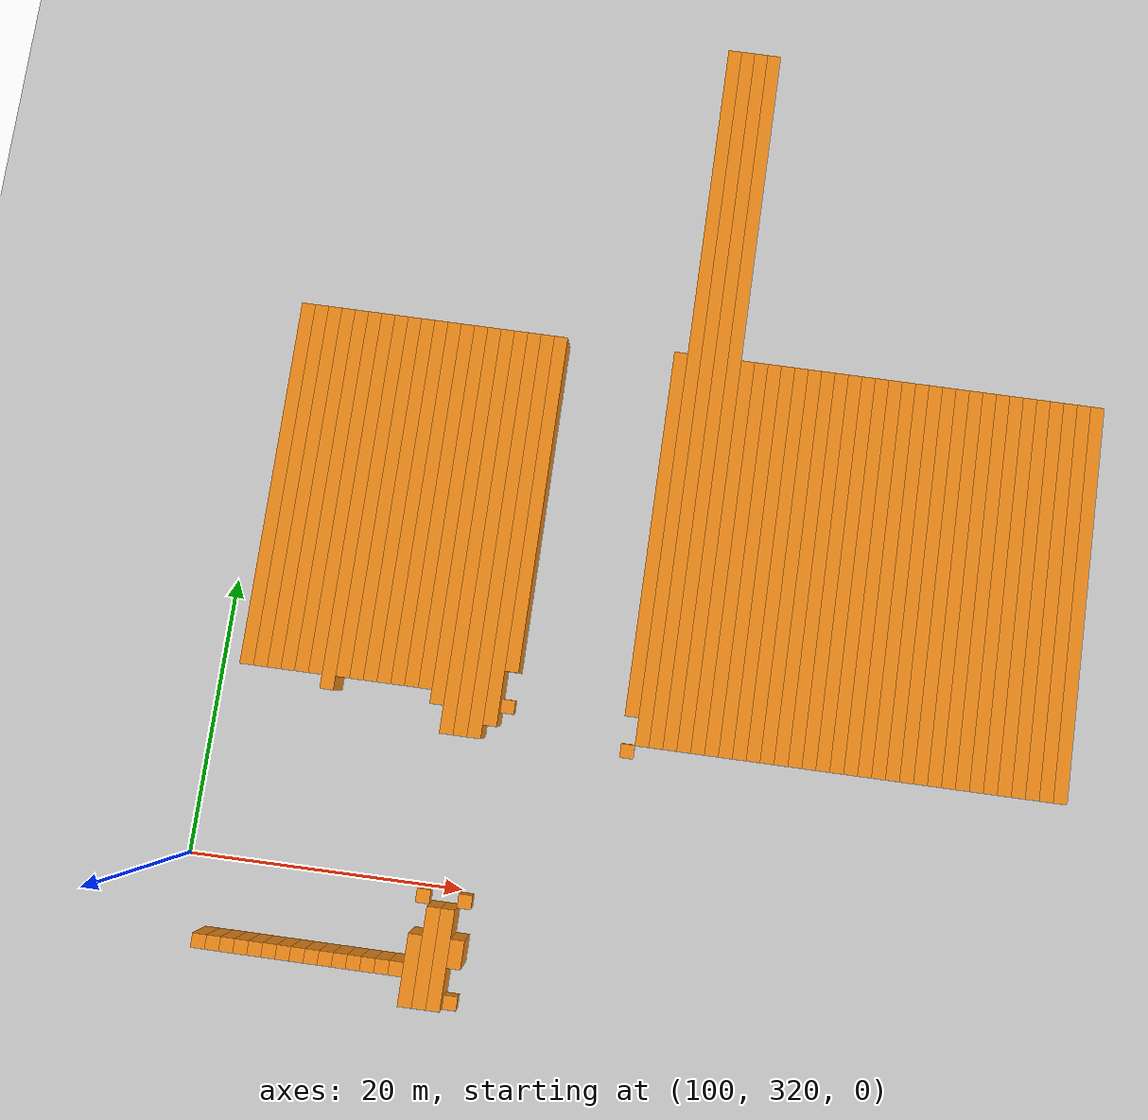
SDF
<sdf version="1.6">
 <world name="default">
  <include><uri>model://ground_plane</uri></include>
  <model name="unit_box_1151">
   <pose>102.50   314.50     1.50 0 0 0</pose>
   <static>1</static>
   <link name="link">
    <inertial>
     <mass>5000</mass>
     <inertia><ixx>200</ixx><ixy>0</ixy><ixz>0</ixz><iyy>200</iyy><iyz>0</iyz><izz>200</izz></inertia>
    </inertial>
    <collision name="collision"><geometry><box><size>1 1 3</size></box></geometry></collision>
    <visual name="visual">
     <geometry><box><size>1 1 3</size></box></geometry>
     <material>
      <script><name>Gazebo/Orange</name><uri>file://media/materials/scripts/gazebo.material</uri></script>
     </material>
    </visual>
   </link>
  </model>
  <model name="unit_box_1152">
   <pose>102.50   347.50     1.50 0 0 0</pose>
   <static>1</static>
   <link name="link">
    <inertial>
     <mass>5000</mass>
     <inertia><ixx>200</ixx><ixy>0</ixy><ixz>0</ixz><iyy>200</iyy><iyz>0</iyz><izz>200</izz></inertia>
    </inertial>
    <collision name="collision"><geometry><box><size>1 27 3</size></box></geometry></collision>
    <visual name="visual">
     <geometry><box><size>1 27 3</size></box></geometry>
     <material>
      <script><name>Gazebo/Orange</name><uri>file://media/materials/scripts/gazebo.material</uri></script>
     </material>
    </visual>
   </link>
  </model>
  <model name="unit_box_1161">
   <pose>103.50   314.50     1.50 0 0 0</pose>
   <static>1</static>
   <link name="link">
    <inertial>
     <mass>5000</mass>
     <inertia><ixx>200</ixx><ixy>0</ixy><ixz>0</ixz><iyy>200</iyy><iyz>0</iyz><izz>200</izz></inertia>
    </inertial>
    <collision name="collision"><geometry><box><size>1 1 3</size></box></geometry></collision>
    <visual name="visual">
     <geometry><box><size>1 1 3</size></box></geometry>
     <material>
      <script><name>Gazebo/Orange</name><uri>file://media/materials/scripts/gazebo.material</uri></script>
     </material>
    </visual>
   </link>
  </model>
  <model name="unit_box_1162">
   <pose>103.50   347.50     1.50 0 0 0</pose>
   <static>1</static>
   <link name="link">
    <inertial>
     <mass>5000</mass>
     <inertia><ixx>200</ixx><ixy>0</ixy><ixz>0</ixz><iyy>200</iyy><iyz>0</iyz><izz>200</izz></inertia>
    </inertial>
    <collision name="collision"><geometry><box><size>1 27 3</size></box></geometry></collision>
    <visual name="visual">
     <geometry><box><size>1 27 3</size></box></geometry>
     <material>
      <script><name>Gazebo/Orange</name><uri>file://media/materials/scripts/gazebo.material</uri></script>
     </material>
    </visual>
   </link>
  </model>
  <model name="unit_box_1171">
   <pose>104.50   314.50     1.50 0 0 0</pose>
   <static>1</static>
   <link name="link">
    <inertial>
     <mass>5000</mass>
     <inertia><ixx>200</ixx><ixy>0</ixy><ixz>0</ixz><iyy>200</iyy><iyz>0</iyz><izz>200</izz></inertia>
    </inertial>
    <collision name="collision"><geometry><box><size>1 1 3</size></box></geometry></collision>
    <visual name="visual">
     <geometry><box><size>1 1 3</size></box></geometry>
     <material>
      <script><name>Gazebo/Orange</name><uri>file://media/materials/scripts/gazebo.material</uri></script>
     </material>
    </visual>
   </link>
  </model>
  <model name="unit_box_1172">
   <pose>104.50   347.50     1.50 0 0 0</pose>
   <static>1</static>
   <link name="link">
    <inertial>
     <mass>5000</mass>
     <inertia><ixx>200</ixx><ixy>0</ixy><ixz>0</ixz><iyy>200</iyy><iyz>0</iyz><izz>200</izz></inertia>
    </inertial>
    <collision name="collision"><geometry><box><size>1 27 3</size></box></geometry></collision>
    <visual name="visual">
     <geometry><box><size>1 27 3</size></box></geometry>
     <material>
      <script><name>Gazebo/Orange</name><uri>file://media/materials/scripts/gazebo.material</uri></script>
     </material>
    </visual>
   </link>
  </model>
  <model name="unit_box_1181">
   <pose>105.50   314.50     1.50 0 0 0</pose>
   <static>1</static>
   <link name="link">
    <inertial>
     <mass>5000</mass>
     <inertia><ixx>200</ixx><ixy>0</ixy><ixz>0</ixz><iyy>200</iyy><iyz>0</iyz><izz>200</izz></inertia>
    </inertial>
    <collision name="collision"><geometry><box><size>1 1 3</size></box></geometry></collision>
    <visual name="visual">
     <geometry><box><size>1 1 3</size></box></geometry>
     <material>
      <script><name>Gazebo/Orange</name><uri>file://media/materials/scripts/gazebo.material</uri></script>
     </material>
    </visual>
   </link>
  </model>
  <model name="unit_box_1182">
   <pose>105.50   347.50     1.50 0 0 0</pose>
   <static>1</static>
   <link name="link">
    <inertial>
     <mass>5000</mass>
     <inertia><ixx>200</ixx><ixy>0</ixy><ixz>0</ixz><iyy>200</iyy><iyz>0</iyz><izz>200</izz></inertia>
    </inertial>
    <collision name="collision"><geometry><box><size>1 27 3</size></box></geometry></collision>
    <visual name="visual">
     <geometry><box><size>1 27 3</size></box></geometry>
     <material>
      <script><name>Gazebo/Orange</name><uri>file://media/materials/scripts/gazebo.material</uri></script>
     </material>
    </visual>
   </link>
  </model>
  <model name="unit_box_1190">
   <pose>106.50   314.50     1.50 0 0 0</pose>
   <static>1</static>
   <link name="link">
    <inertial>
     <mass>5000</mass>
     <inertia><ixx>200</ixx><ixy>0</ixy><ixz>0</ixz><iyy>200</iyy><iyz>0</iyz><izz>200</izz></inertia>
    </inertial>
    <collision name="collision"><geometry><box><size>1 1 3</size></box></geometry></collision>
    <visual name="visual">
     <geometry><box><size>1 1 3</size></box></geometry>
     <material>
      <script><name>Gazebo/Orange</name><uri>file://media/materials/scripts/gazebo.material</uri></script>
     </material>
    </visual>
   </link>
  </model>
  <model name="unit_box_1191">
   <pose>106.50   347.50     1.50 0 0 0</pose>
   <static>1</static>
   <link name="link">
    <inertial>
     <mass>5000</mass>
     <inertia><ixx>200</ixx><ixy>0</ixy><ixz>0</ixz><iyy>200</iyy><iyz>0</iyz><izz>200</izz></inertia>
    </inertial>
    <collision name="collision"><geometry><box><size>1 27 3</size></box></geometry></collision>
    <visual name="visual">
     <geometry><box><size>1 27 3</size></box></geometry>
     <material>
      <script><name>Gazebo/Orange</name><uri>file://media/materials/scripts/gazebo.material</uri></script>
     </material>
    </visual>
   </link>
  </model>
  <model name="unit_box_1199">
   <pose>107.50   314.50     1.50 0 0 0</pose>
   <static>1</static>
   <link name="link">
    <inertial>
     <mass>5000</mass>
     <inertia><ixx>200</ixx><ixy>0</ixy><ixz>0</ixz><iyy>200</iyy><iyz>0</iyz><izz>200</izz></inertia>
    </inertial>
    <collision name="collision"><geometry><box><size>1 1 3</size></box></geometry></collision>
    <visual name="visual">
     <geometry><box><size>1 1 3</size></box></geometry>
     <material>
      <script><name>Gazebo/Orange</name><uri>file://media/materials/scripts/gazebo.material</uri></script>
     </material>
    </visual>
   </link>
  </model>
  <model name="unit_box_1200">
   <pose>107.50   347.50     1.50 0 0 0</pose>
   <static>1</static>
   <link name="link">
    <inertial>
     <mass>5000</mass>
     <inertia><ixx>200</ixx><ixy>0</ixy><ixz>0</ixz><iyy>200</iyy><iyz>0</iyz><izz>200</izz></inertia>
    </inertial>
    <collision name="collision"><geometry><box><size>1 27 3</size></box></geometry></collision>
    <visual name="visual">
     <geometry><box><size>1 27 3</size></box></geometry>
     <material>
      <script><name>Gazebo/Orange</name><uri>file://media/materials/scripts/gazebo.material</uri></script>
     </material>
    </visual>
   </link>
  </model>
  <model name="unit_box_1208">
   <pose>108.50   314.50     1.50 0 0 0</pose>
   <static>1</static>
   <link name="link">
    <inertial>
     <mass>5000</mass>
     <inertia><ixx>200</ixx><ixy>0</ixy><ixz>0</ixz><iyy>200</iyy><iyz>0</iyz><izz>200</izz></inertia>
    </inertial>
    <collision name="collision"><geometry><box><size>1 1 3</size></box></geometry></collision>
    <visual name="visual">
     <geometry><box><size>1 1 3</size></box></geometry>
     <material>
      <script><name>Gazebo/Orange</name><uri>file://media/materials/scripts/gazebo.material</uri></script>
     </material>
    </visual>
   </link>
  </model>
  <model name="unit_box_1209">
   <pose>108.50   347.00     1.50 0 0 0</pose>
   <static>1</static>
   <link name="link">
    <inertial>
     <mass>5000</mass>
     <inertia><ixx>200</ixx><ixy>0</ixy><ixz>0</ixz><iyy>200</iyy><iyz>0</iyz><izz>200</izz></inertia>
    </inertial>
    <collision name="collision"><geometry><box><size>1 28 3</size></box></geometry></collision>
    <visual name="visual">
     <geometry><box><size>1 28 3</size></box></geometry>
     <material>
      <script><name>Gazebo/Orange</name><uri>file://media/materials/scripts/gazebo.material</uri></script>
     </material>
    </visual>
   </link>
  </model>
  <model name="unit_box_1217">
   <pose>109.50   314.50     1.50 0 0 0</pose>
   <static>1</static>
   <link name="link">
    <inertial>
     <mass>5000</mass>
     <inertia><ixx>200</ixx><ixy>0</ixy><ixz>0</ixz><iyy>200</iyy><iyz>0</iyz><izz>200</izz></inertia>
    </inertial>
    <collision name="collision"><geometry><box><size>1 1 3</size></box></geometry></collision>
    <visual name="visual">
     <geometry><box><size>1 1 3</size></box></geometry>
     <material>
      <script><name>Gazebo/Orange</name><uri>file://media/materials/scripts/gazebo.material</uri></script>
     </material>
    </visual>
   </link>
  </model>
  <model name="unit_box_1218">
   <pose>109.50   347.50     1.50 0 0 0</pose>
   <static>1</static>
   <link name="link">
    <inertial>
     <mass>5000</mass>
     <inertia><ixx>200</ixx><ixy>0</ixy><ixz>0</ixz><iyy>200</iyy><iyz>0</iyz><izz>200</izz></inertia>
    </inertial>
    <collision name="collision"><geometry><box><size>1 27 3</size></box></geometry></collision>
    <visual name="visual">
     <geometry><box><size>1 27 3</size></box></geometry>
     <material>
      <script><name>Gazebo/Orange</name><uri>file://media/materials/scripts/gazebo.material</uri></script>
     </material>
    </visual>
   </link>
  </model>
  <model name="unit_box_1226">
   <pose>110.50   314.50     1.50 0 0 0</pose>
   <static>1</static>
   <link name="link">
    <inertial>
     <mass>5000</mass>
     <inertia><ixx>200</ixx><ixy>0</ixy><ixz>0</ixz><iyy>200</iyy><iyz>0</iyz><izz>200</izz></inertia>
    </inertial>
    <collision name="collision"><geometry><box><size>1 1 3</size></box></geometry></collision>
    <visual name="visual">
     <geometry><box><size>1 1 3</size></box></geometry>
     <material>
      <script><name>Gazebo/Orange</name><uri>file://media/materials/scripts/gazebo.material</uri></script>
     </material>
    </visual>
   </link>
  </model>
  <model name="unit_box_1227">
   <pose>110.50   347.50     1.50 0 0 0</pose>
   <static>1</static>
   <link name="link">
    <inertial>
     <mass>5000</mass>
     <inertia><ixx>200</ixx><ixy>0</ixy><ixz>0</ixz><iyy>200</iyy><iyz>0</iyz><izz>200</izz></inertia>
    </inertial>
    <collision name="collision"><geometry><box><size>1 27 3</size></box></geometry></collision>
    <visual name="visual">
     <geometry><box><size>1 27 3</size></box></geometry>
     <material>
      <script><name>Gazebo/Orange</name><uri>file://media/materials/scripts/gazebo.material</uri></script>
     </material>
    </visual>
   </link>
  </model>
  <model name="unit_box_1236">
   <pose>111.50   314.50     1.50 0 0 0</pose>
   <static>1</static>
   <link name="link">
    <inertial>
     <mass>5000</mass>
     <inertia><ixx>200</ixx><ixy>0</ixy><ixz>0</ixz><iyy>200</iyy><iyz>0</iyz><izz>200</izz></inertia>
    </inertial>
    <collision name="collision"><geometry><box><size>1 1 3</size></box></geometry></collision>
    <visual name="visual">
     <geometry><box><size>1 1 3</size></box></geometry>
     <material>
      <script><name>Gazebo/Orange</name><uri>file://media/materials/scripts/gazebo.material</uri></script>
     </material>
    </visual>
   </link>
  </model>
  <model name="unit_box_1237">
   <pose>111.50   347.50     1.50 0 0 0</pose>
   <static>1</static>
   <link name="link">
    <inertial>
     <mass>5000</mass>
     <inertia><ixx>200</ixx><ixy>0</ixy><ixz>0</ixz><iyy>200</iyy><iyz>0</iyz><izz>200</izz></inertia>
    </inertial>
    <collision name="collision"><geometry><box><size>1 27 3</size></box></geometry></collision>
    <visual name="visual">
     <geometry><box><size>1 27 3</size></box></geometry>
     <material>
      <script><name>Gazebo/Orange</name><uri>file://media/materials/scripts/gazebo.material</uri></script>
     </material>
    </visual>
   </link>
  </model>
  <model name="unit_box_1246">
   <pose>112.50   314.50     1.50 0 0 0</pose>
   <static>1</static>
   <link name="link">
    <inertial>
     <mass>5000</mass>
     <inertia><ixx>200</ixx><ixy>0</ixy><ixz>0</ixz><iyy>200</iyy><iyz>0</iyz><izz>200</izz></inertia>
    </inertial>
    <collision name="collision"><geometry><box><size>1 1 3</size></box></geometry></collision>
    <visual name="visual">
     <geometry><box><size>1 1 3</size></box></geometry>
     <material>
      <script><name>Gazebo/Orange</name><uri>file://media/materials/scripts/gazebo.material</uri></script>
     </material>
    </visual>
   </link>
  </model>
  <model name="unit_box_1247">
   <pose>112.50   347.50     1.50 0 0 0</pose>
   <static>1</static>
   <link name="link">
    <inertial>
     <mass>5000</mass>
     <inertia><ixx>200</ixx><ixy>0</ixy><ixz>0</ixz><iyy>200</iyy><iyz>0</iyz><izz>200</izz></inertia>
    </inertial>
    <collision name="collision"><geometry><box><size>1 27 3</size></box></geometry></collision>
    <visual name="visual">
     <geometry><box><size>1 27 3</size></box></geometry>
     <material>
      <script><name>Gazebo/Orange</name><uri>file://media/materials/scripts/gazebo.material</uri></script>
     </material>
    </visual>
   </link>
  </model>
  <model name="unit_box_1256">
   <pose>113.50   314.50     1.50 0 0 0</pose>
   <static>1</static>
   <link name="link">
    <inertial>
     <mass>5000</mass>
     <inertia><ixx>200</ixx><ixy>0</ixy><ixz>0</ixz><iyy>200</iyy><iyz>0</iyz><izz>200</izz></inertia>
    </inertial>
    <collision name="collision"><geometry><box><size>1 1 3</size></box></geometry></collision>
    <visual name="visual">
     <geometry><box><size>1 1 3</size></box></geometry>
     <material>
      <script><name>Gazebo/Orange</name><uri>file://media/materials/scripts/gazebo.material</uri></script>
     </material>
    </visual>
   </link>
  </model>
  <model name="unit_box_1257">
   <pose>113.50   347.50     1.50 0 0 0</pose>
   <static>1</static>
   <link name="link">
    <inertial>
     <mass>5000</mass>
     <inertia><ixx>200</ixx><ixy>0</ixy><ixz>0</ixz><iyy>200</iyy><iyz>0</iyz><izz>200</izz></inertia>
    </inertial>
    <collision name="collision"><geometry><box><size>1 27 3</size></box></geometry></collision>
    <visual name="visual">
     <geometry><box><size>1 27 3</size></box></geometry>
     <material>
      <script><name>Gazebo/Orange</name><uri>file://media/materials/scripts/gazebo.material</uri></script>
     </material>
    </visual>
   </link>
  </model>
  <model name="unit_box_1266">
   <pose>114.50   314.50     1.50 0 0 0</pose>
   <static>1</static>
   <link name="link">
    <inertial>
     <mass>5000</mass>
     <inertia><ixx>200</ixx><ixy>0</ixy><ixz>0</ixz><iyy>200</iyy><iyz>0</iyz><izz>200</izz></inertia>
    </inertial>
    <collision name="collision"><geometry><box><size>1 1 3</size></box></geometry></collision>
    <visual name="visual">
     <geometry><box><size>1 1 3</size></box></geometry>
     <material>
      <script><name>Gazebo/Orange</name><uri>file://media/materials/scripts/gazebo.material</uri></script>
     </material>
    </visual>
   </link>
  </model>
  <model name="unit_box_1267">
   <pose>114.50   347.50     1.50 0 0 0</pose>
   <static>1</static>
   <link name="link">
    <inertial>
     <mass>5000</mass>
     <inertia><ixx>200</ixx><ixy>0</ixy><ixz>0</ixz><iyy>200</iyy><iyz>0</iyz><izz>200</izz></inertia>
    </inertial>
    <collision name="collision"><geometry><box><size>1 27 3</size></box></geometry></collision>
    <visual name="visual">
     <geometry><box><size>1 27 3</size></box></geometry>
     <material>
      <script><name>Gazebo/Orange</name><uri>file://media/materials/scripts/gazebo.material</uri></script>
     </material>
    </visual>
   </link>
  </model>
  <model name="unit_box_1276">
   <pose>115.50   314.50     1.50 0 0 0</pose>
   <static>1</static>
   <link name="link">
    <inertial>
     <mass>5000</mass>
     <inertia><ixx>200</ixx><ixy>0</ixy><ixz>0</ixz><iyy>200</iyy><iyz>0</iyz><izz>200</izz></inertia>
    </inertial>
    <collision name="collision"><geometry><box><size>1 1 3</size></box></geometry></collision>
    <visual name="visual">
     <geometry><box><size>1 1 3</size></box></geometry>
     <material>
      <script><name>Gazebo/Orange</name><uri>file://media/materials/scripts/gazebo.material</uri></script>
     </material>
    </visual>
   </link>
  </model>
  <model name="unit_box_1277">
   <pose>115.50   347.50     1.50 0 0 0</pose>
   <static>1</static>
   <link name="link">
    <inertial>
     <mass>5000</mass>
     <inertia><ixx>200</ixx><ixy>0</ixy><ixz>0</ixz><iyy>200</iyy><iyz>0</iyz><izz>200</izz></inertia>
    </inertial>
    <collision name="collision"><geometry><box><size>1 27 3</size></box></geometry></collision>
    <visual name="visual">
     <geometry><box><size>1 27 3</size></box></geometry>
     <material>
      <script><name>Gazebo/Orange</name><uri>file://media/materials/scripts/gazebo.material</uri></script>
     </material>
    </visual>
   </link>
  </model>
  <model name="unit_box_1290">
   <pose>116.50   314.50     1.50 0 0 0</pose>
   <static>1</static>
   <link name="link">
    <inertial>
     <mass>5000</mass>
     <inertia><ixx>200</ixx><ixy>0</ixy><ixz>0</ixz><iyy>200</iyy><iyz>0</iyz><izz>200</izz></inertia>
    </inertial>
    <collision name="collision"><geometry><box><size>1 1 3</size></box></geometry></collision>
    <visual name="visual">
     <geometry><box><size>1 1 3</size></box></geometry>
     <material>
      <script><name>Gazebo/Orange</name><uri>file://media/materials/scripts/gazebo.material</uri></script>
     </material>
    </visual>
   </link>
  </model>
  <model name="unit_box_1291">
   <pose>116.50   347.00     1.50 0 0 0</pose>
   <static>1</static>
   <link name="link">
    <inertial>
     <mass>5000</mass>
     <inertia><ixx>200</ixx><ixy>0</ixy><ixz>0</ixz><iyy>200</iyy><iyz>0</iyz><izz>200</izz></inertia>
    </inertial>
    <collision name="collision"><geometry><box><size>1 28 3</size></box></geometry></collision>
    <visual name="visual">
     <geometry><box><size>1 28 3</size></box></geometry>
     <material>
      <script><name>Gazebo/Orange</name><uri>file://media/materials/scripts/gazebo.material</uri></script>
     </material>
    </visual>
   </link>
  </model>
  <model name="unit_box_1301">
   <pose>117.50   314.50     1.50 0 0 0</pose>
   <static>1</static>
   <link name="link">
    <inertial>
     <mass>5000</mass>
     <inertia><ixx>200</ixx><ixy>0</ixy><ixz>0</ixz><iyy>200</iyy><iyz>0</iyz><izz>200</izz></inertia>
    </inertial>
    <collision name="collision"><geometry><box><size>1 5 3</size></box></geometry></collision>
    <visual name="visual">
     <geometry><box><size>1 5 3</size></box></geometry>
     <material>
      <script><name>Gazebo/Orange</name><uri>file://media/materials/scripts/gazebo.material</uri></script>
     </material>
    </visual>
   </link>
  </model>
  <model name="unit_box_1302">
   <pose>117.50   319.50     1.50 0 0 0</pose>
   <static>1</static>
   <link name="link">
    <inertial>
     <mass>5000</mass>
     <inertia><ixx>200</ixx><ixy>0</ixy><ixz>0</ixz><iyy>200</iyy><iyz>0</iyz><izz>200</izz></inertia>
    </inertial>
    <collision name="collision"><geometry><box><size>1 1 1</size></box></geometry></collision>
    <visual name="visual">
     <geometry><box><size>1 1 1</size></box></geometry>
     <material>
      <script><name>Gazebo/Orange</name><uri>file://media/materials/scripts/gazebo.material</uri></script>
     </material>
    </visual>
   </link>
  </model>
  <model name="unit_box_1303">
   <pose>117.50   346.00     1.50 0 0 0</pose>
   <static>1</static>
   <link name="link">
    <inertial>
     <mass>5000</mass>
     <inertia><ixx>200</ixx><ixy>0</ixy><ixz>0</ixz><iyy>200</iyy><iyz>0</iyz><izz>200</izz></inertia>
    </inertial>
    <collision name="collision"><geometry><box><size>1 30 3</size></box></geometry></collision>
    <visual name="visual">
     <geometry><box><size>1 30 3</size></box></geometry>
     <material>
      <script><name>Gazebo/Orange</name><uri>file://media/materials/scripts/gazebo.material</uri></script>
     </material>
    </visual>
   </link>
  </model>
  <model name="unit_box_1313">
   <pose>118.50   315.50     1.50 0 0 0</pose>
   <static>1</static>
   <link name="link">
    <inertial>
     <mass>5000</mass>
     <inertia><ixx>200</ixx><ixy>0</ixy><ixz>0</ixz><iyy>200</iyy><iyz>0</iyz><izz>200</izz></inertia>
    </inertial>
    <collision name="collision"><geometry><box><size>1 7 3</size></box></geometry></collision>
    <visual name="visual">
     <geometry><box><size>1 7 3</size></box></geometry>
     <material>
      <script><name>Gazebo/Orange</name><uri>file://media/materials/scripts/gazebo.material</uri></script>
     </material>
    </visual>
   </link>
  </model>
  <model name="unit_box_1314">
   <pose>118.50   346.00     1.50 0 0 0</pose>
   <static>1</static>
   <link name="link">
    <inertial>
     <mass>5000</mass>
     <inertia><ixx>200</ixx><ixy>0</ixy><ixz>0</ixz><iyy>200</iyy><iyz>0</iyz><izz>200</izz></inertia>
    </inertial>
    <collision name="collision"><geometry><box><size>1 30 3</size></box></geometry></collision>
    <visual name="visual">
     <geometry><box><size>1 30 3</size></box></geometry>
     <material>
      <script><name>Gazebo/Orange</name><uri>file://media/materials/scripts/gazebo.material</uri></script>
     </material>
    </visual>
   </link>
  </model>
  <model name="unit_box_1327">
   <pose>119.50   315.50     1.50 0 0 0</pose>
   <static>1</static>
   <link name="link">
    <inertial>
     <mass>5000</mass>
     <inertia><ixx>200</ixx><ixy>0</ixy><ixz>0</ixz><iyy>200</iyy><iyz>0</iyz><izz>200</izz></inertia>
    </inertial>
    <collision name="collision"><geometry><box><size>1 7 3</size></box></geometry></collision>
    <visual name="visual">
     <geometry><box><size>1 7 3</size></box></geometry>
     <material>
      <script><name>Gazebo/Orange</name><uri>file://media/materials/scripts/gazebo.material</uri></script>
     </material>
    </visual>
   </link>
  </model>
  <model name="unit_box_1328">
   <pose>119.50   346.00     1.50 0 0 0</pose>
   <static>1</static>
   <link name="link">
    <inertial>
     <mass>5000</mass>
     <inertia><ixx>200</ixx><ixy>0</ixy><ixz>0</ixz><iyy>200</iyy><iyz>0</iyz><izz>200</izz></inertia>
    </inertial>
    <collision name="collision"><geometry><box><size>1 30 3</size></box></geometry></collision>
    <visual name="visual">
     <geometry><box><size>1 30 3</size></box></geometry>
     <material>
      <script><name>Gazebo/Orange</name><uri>file://media/materials/scripts/gazebo.material</uri></script>
     </material>
    </visual>
   </link>
  </model>
  <model name="unit_box_1337">
   <pose>120.50   312.50     1.50 0 0 0</pose>
   <static>1</static>
   <link name="link">
    <inertial>
     <mass>5000</mass>
     <inertia><ixx>200</ixx><ixy>0</ixy><ixz>0</ixz><iyy>200</iyy><iyz>0</iyz><izz>200</izz></inertia>
    </inertial>
    <collision name="collision"><geometry><box><size>1 1 1</size></box></geometry></collision>
    <visual name="visual">
     <geometry><box><size>1 1 1</size></box></geometry>
     <material>
      <script><name>Gazebo/Orange</name><uri>file://media/materials/scripts/gazebo.material</uri></script>
     </material>
    </visual>
   </link>
  </model>
  <model name="unit_box_1338">
   <pose>120.50   316.00     1.50 0 0 0</pose>
   <static>1</static>
   <link name="link">
    <inertial>
     <mass>5000</mass>
     <inertia><ixx>200</ixx><ixy>0</ixy><ixz>0</ixz><iyy>200</iyy><iyz>0</iyz><izz>200</izz></inertia>
    </inertial>
    <collision name="collision"><geometry><box><size>1 2 3</size></box></geometry></collision>
    <visual name="visual">
     <geometry><box><size>1 2 3</size></box></geometry>
     <material>
      <script><name>Gazebo/Orange</name><uri>file://media/materials/scripts/gazebo.material</uri></script>
     </material>
    </visual>
   </link>
  </model>
  <model name="unit_box_1339">
   <pose>120.50   319.50     1.50 0 0 0</pose>
   <static>1</static>
   <link name="link">
    <inertial>
     <mass>5000</mass>
     <inertia><ixx>200</ixx><ixy>0</ixy><ixz>0</ixz><iyy>200</iyy><iyz>0</iyz><izz>200</izz></inertia>
    </inertial>
    <collision name="collision"><geometry><box><size>1 1 1</size></box></geometry></collision>
    <visual name="visual">
     <geometry><box><size>1 1 1</size></box></geometry>
     <material>
      <script><name>Gazebo/Orange</name><uri>file://media/materials/scripts/gazebo.material</uri></script>
     </material>
    </visual>
   </link>
  </model>
  <model name="unit_box_1340">
   <pose>120.50   346.50     1.50 0 0 0</pose>
   <static>1</static>
   <link name="link">
    <inertial>
     <mass>5000</mass>
     <inertia><ixx>200</ixx><ixy>0</ixy><ixz>0</ixz><iyy>200</iyy><iyz>0</iyz><izz>200</izz></inertia>
    </inertial>
    <collision name="collision"><geometry><box><size>1 29 3</size></box></geometry></collision>
    <visual name="visual">
     <geometry><box><size>1 29 3</size></box></geometry>
     <material>
      <script><name>Gazebo/Orange</name><uri>file://media/materials/scripts/gazebo.material</uri></script>
     </material>
    </visual>
   </link>
  </model>
  <model name="unit_box_1348">
   <pose>121.50   333.50     1.50 0 0 0</pose>
   <static>1</static>
   <link name="link">
    <inertial>
     <mass>5000</mass>
     <inertia><ixx>200</ixx><ixy>0</ixy><ixz>0</ixz><iyy>200</iyy><iyz>0</iyz><izz>200</izz></inertia>
    </inertial>
    <collision name="collision"><geometry><box><size>1 1 1</size></box></geometry></collision>
    <visual name="visual">
     <geometry><box><size>1 1 1</size></box></geometry>
     <material>
      <script><name>Gazebo/Orange</name><uri>file://media/materials/scripts/gazebo.material</uri></script>
     </material>
    </visual>
   </link>
  </model>
  <model name="unit_box_1349">
   <pose>121.50   348.50     1.50 0 0 0</pose>
   <static>1</static>
   <link name="link">
    <inertial>
     <mass>5000</mass>
     <inertia><ixx>200</ixx><ixy>0</ixy><ixz>0</ixz><iyy>200</iyy><iyz>0</iyz><izz>200</izz></inertia>
    </inertial>
    <collision name="collision"><geometry><box><size>1 25 3</size></box></geometry></collision>
    <visual name="visual">
     <geometry><box><size>1 25 3</size></box></geometry>
     <material>
      <script><name>Gazebo/Orange</name><uri>file://media/materials/scripts/gazebo.material</uri></script>
     </material>
    </visual>
   </link>
  </model>
  <model name="unit_box_1409">
   <pose>130.50   331.50     1.50 0 0 0</pose>
   <static>1</static>
   <link name="link">
    <inertial>
     <mass>5000</mass>
     <inertia><ixx>200</ixx><ixy>0</ixy><ixz>0</ixz><iyy>200</iyy><iyz>0</iyz><izz>200</izz></inertia>
    </inertial>
    <collision name="collision"><geometry><box><size>1 1 1</size></box></geometry></collision>
    <visual name="visual">
     <geometry><box><size>1 1 1</size></box></geometry>
     <material>
      <script><name>Gazebo/Orange</name><uri>file://media/materials/scripts/gazebo.material</uri></script>
     </material>
    </visual>
   </link>
  </model>
  <model name="unit_box_1410">
   <pose>130.50   347.50     1.50 0 0 0</pose>
   <static>1</static>
   <link name="link">
    <inertial>
     <mass>5000</mass>
     <inertia><ixx>200</ixx><ixy>0</ixy><ixz>0</ixz><iyy>200</iyy><iyz>0</iyz><izz>200</izz></inertia>
    </inertial>
    <collision name="collision"><geometry><box><size>1 27 3</size></box></geometry></collision>
    <visual name="visual">
     <geometry><box><size>1 27 3</size></box></geometry>
     <material>
      <script><name>Gazebo/Orange</name><uri>file://media/materials/scripts/gazebo.material</uri></script>
     </material>
    </visual>
   </link>
  </model>
  <model name="unit_box_1417">
   <pose>131.50   358.50     1.50 0 0 0</pose>
   <static>1</static>
   <link name="link">
    <inertial>
     <mass>5000</mass>
     <inertia><ixx>200</ixx><ixy>0</ixy><ixz>0</ixz><iyy>200</iyy><iyz>0</iyz><izz>200</izz></inertia>
    </inertial>
    <collision name="collision"><geometry><box><size>1 53 3</size></box></geometry></collision>
    <visual name="visual">
     <geometry><box><size>1 53 3</size></box></geometry>
     <material>
      <script><name>Gazebo/Orange</name><uri>file://media/materials/scripts/gazebo.material</uri></script>
     </material>
    </visual>
   </link>
  </model>
  <model name="unit_box_1424">
   <pose>132.50   358.50     1.50 0 0 0</pose>
   <static>1</static>
   <link name="link">
    <inertial>
     <mass>5000</mass>
     <inertia><ixx>200</ixx><ixy>0</ixy><ixz>0</ixz><iyy>200</iyy><iyz>0</iyz><izz>200</izz></inertia>
    </inertial>
    <collision name="collision"><geometry><box><size>1 53 3</size></box></geometry></collision>
    <visual name="visual">
     <geometry><box><size>1 53 3</size></box></geometry>
     <material>
      <script><name>Gazebo/Orange</name><uri>file://media/materials/scripts/gazebo.material</uri></script>
     </material>
    </visual>
   </link>
  </model>
  <model name="unit_box_1431">
   <pose>133.50   358.50     1.50 0 0 0</pose>
   <static>1</static>
   <link name="link">
    <inertial>
     <mass>5000</mass>
     <inertia><ixx>200</ixx><ixy>0</ixy><ixz>0</ixz><iyy>200</iyy><iyz>0</iyz><izz>200</izz></inertia>
    </inertial>
    <collision name="collision"><geometry><box><size>1 53 3</size></box></geometry></collision>
    <visual name="visual">
     <geometry><box><size>1 53 3</size></box></geometry>
     <material>
      <script><name>Gazebo/Orange</name><uri>file://media/materials/scripts/gazebo.material</uri></script>
     </material>
    </visual>
   </link>
  </model>
  <model name="unit_box_1438">
   <pose>134.50   358.50     1.50 0 0 0</pose>
   <static>1</static>
   <link name="link">
    <inertial>
     <mass>5000</mass>
     <inertia><ixx>200</ixx><ixy>0</ixy><ixz>0</ixz><iyy>200</iyy><iyz>0</iyz><izz>200</izz></inertia>
    </inertial>
    <collision name="collision"><geometry><box><size>1 53 3</size></box></geometry></collision>
    <visual name="visual">
     <geometry><box><size>1 53 3</size></box></geometry>
     <material>
      <script><name>Gazebo/Orange</name><uri>file://media/materials/scripts/gazebo.material</uri></script>
     </material>
    </visual>
   </link>
  </model>
  <model name="unit_box_1452">
   <pose>135.50   346.50     1.50 0 0 0</pose>
   <static>1</static>
   <link name="link">
    <inertial>
     <mass>5000</mass>
     <inertia><ixx>200</ixx><ixy>0</ixy><ixz>0</ixz><iyy>200</iyy><iyz>0</iyz><izz>200</izz></inertia>
    </inertial>
    <collision name="collision"><geometry><box><size>1 29 3</size></box></geometry></collision>
    <visual name="visual">
     <geometry><box><size>1 29 3</size></box></geometry>
     <material>
      <script><name>Gazebo/Orange</name><uri>file://media/materials/scripts/gazebo.material</uri></script>
     </material>
    </visual>
   </link>
  </model>
  <model name="unit_box_1465">
   <pose>136.50   346.50     1.50 0 0 0</pose>
   <static>1</static>
   <link name="link">
    <inertial>
     <mass>5000</mass>
     <inertia><ixx>200</ixx><ixy>0</ixy><ixz>0</ixz><iyy>200</iyy><iyz>0</iyz><izz>200</izz></inertia>
    </inertial>
    <collision name="collision"><geometry><box><size>1 29 3</size></box></geometry></collision>
    <visual name="visual">
     <geometry><box><size>1 29 3</size></box></geometry>
     <material>
      <script><name>Gazebo/Orange</name><uri>file://media/materials/scripts/gazebo.material</uri></script>
     </material>
    </visual>
   </link>
  </model>
  <model name="unit_box_1479">
   <pose>137.50   346.50     1.50 0 0 0</pose>
   <static>1</static>
   <link name="link">
    <inertial>
     <mass>5000</mass>
     <inertia><ixx>200</ixx><ixy>0</ixy><ixz>0</ixz><iyy>200</iyy><iyz>0</iyz><izz>200</izz></inertia>
    </inertial>
    <collision name="collision"><geometry><box><size>1 29 3</size></box></geometry></collision>
    <visual name="visual">
     <geometry><box><size>1 29 3</size></box></geometry>
     <material>
      <script><name>Gazebo/Orange</name><uri>file://media/materials/scripts/gazebo.material</uri></script>
     </material>
    </visual>
   </link>
  </model>
  <model name="unit_box_1492">
   <pose>138.50   346.50     1.50 0 0 0</pose>
   <static>1</static>
   <link name="link">
    <inertial>
     <mass>5000</mass>
     <inertia><ixx>200</ixx><ixy>0</ixy><ixz>0</ixz><iyy>200</iyy><iyz>0</iyz><izz>200</izz></inertia>
    </inertial>
    <collision name="collision"><geometry><box><size>1 29 3</size></box></geometry></collision>
    <visual name="visual">
     <geometry><box><size>1 29 3</size></box></geometry>
     <material>
      <script><name>Gazebo/Orange</name><uri>file://media/materials/scripts/gazebo.material</uri></script>
     </material>
    </visual>
   </link>
  </model>
  <model name="unit_box_1505">
   <pose>139.50   346.50     1.50 0 0 0</pose>
   <static>1</static>
   <link name="link">
    <inertial>
     <mass>5000</mass>
     <inertia><ixx>200</ixx><ixy>0</ixy><ixz>0</ixz><iyy>200</iyy><iyz>0</iyz><izz>200</izz></inertia>
    </inertial>
    <collision name="collision"><geometry><box><size>1 29 3</size></box></geometry></collision>
    <visual name="visual">
     <geometry><box><size>1 29 3</size></box></geometry>
     <material>
      <script><name>Gazebo/Orange</name><uri>file://media/materials/scripts/gazebo.material</uri></script>
     </material>
    </visual>
   </link>
  </model>
  <model name="unit_box_1517">
   <pose>140.50   346.50     1.50 0 0 0</pose>
   <static>1</static>
   <link name="link">
    <inertial>
     <mass>5000</mass>
     <inertia><ixx>200</ixx><ixy>0</ixy><ixz>0</ixz><iyy>200</iyy><iyz>0</iyz><izz>200</izz></inertia>
    </inertial>
    <collision name="collision"><geometry><box><size>1 29 3</size></box></geometry></collision>
    <visual name="visual">
     <geometry><box><size>1 29 3</size></box></geometry>
     <material>
      <script><name>Gazebo/Orange</name><uri>file://media/materials/scripts/gazebo.material</uri></script>
     </material>
    </visual>
   </link>
  </model>
  <model name="unit_box_1529">
   <pose>141.50   346.50     1.50 0 0 0</pose>
   <static>1</static>
   <link name="link">
    <inertial>
     <mass>5000</mass>
     <inertia><ixx>200</ixx><ixy>0</ixy><ixz>0</ixz><iyy>200</iyy><iyz>0</iyz><izz>200</izz></inertia>
    </inertial>
    <collision name="collision"><geometry><box><size>1 29 3</size></box></geometry></collision>
    <visual name="visual">
     <geometry><box><size>1 29 3</size></box></geometry>
     <material>
      <script><name>Gazebo/Orange</name><uri>file://media/materials/scripts/gazebo.material</uri></script>
     </material>
    </visual>
   </link>
  </model>
  <model name="unit_box_1536">
   <pose>142.50   346.50     1.50 0 0 0</pose>
   <static>1</static>
   <link name="link">
    <inertial>
     <mass>5000</mass>
     <inertia><ixx>200</ixx><ixy>0</ixy><ixz>0</ixz><iyy>200</iyy><iyz>0</iyz><izz>200</izz></inertia>
    </inertial>
    <collision name="collision"><geometry><box><size>1 29 3</size></box></geometry></collision>
    <visual name="visual">
     <geometry><box><size>1 29 3</size></box></geometry>
     <material>
      <script><name>Gazebo/Orange</name><uri>file://media/materials/scripts/gazebo.material</uri></script>
     </material>
    </visual>
   </link>
  </model>
  <model name="unit_box_1543">
   <pose>143.50   346.50     1.50 0 0 0</pose>
   <static>1</static>
   <link name="link">
    <inertial>
     <mass>5000</mass>
     <inertia><ixx>200</ixx><ixy>0</ixy><ixz>0</ixz><iyy>200</iyy><iyz>0</iyz><izz>200</izz></inertia>
    </inertial>
    <collision name="collision"><geometry><box><size>1 29 3</size></box></geometry></collision>
    <visual name="visual">
     <geometry><box><size>1 29 3</size></box></geometry>
     <material>
      <script><name>Gazebo/Orange</name><uri>file://media/materials/scripts/gazebo.material</uri></script>
     </material>
    </visual>
   </link>
  </model>
  <model name="unit_box_1550">
   <pose>144.50   346.50     1.50 0 0 0</pose>
   <static>1</static>
   <link name="link">
    <inertial>
     <mass>5000</mass>
     <inertia><ixx>200</ixx><ixy>0</ixy><ixz>0</ixz><iyy>200</iyy><iyz>0</iyz><izz>200</izz></inertia>
    </inertial>
    <collision name="collision"><geometry><box><size>1 29 3</size></box></geometry></collision>
    <visual name="visual">
     <geometry><box><size>1 29 3</size></box></geometry>
     <material>
      <script><name>Gazebo/Orange</name><uri>file://media/materials/scripts/gazebo.material</uri></script>
     </material>
    </visual>
   </link>
  </model>
  <model name="unit_box_1557">
   <pose>145.50   346.50     1.50 0 0 0</pose>
   <static>1</static>
   <link name="link">
    <inertial>
     <mass>5000</mass>
     <inertia><ixx>200</ixx><ixy>0</ixy><ixz>0</ixz><iyy>200</iyy><iyz>0</iyz><izz>200</izz></inertia>
    </inertial>
    <collision name="collision"><geometry><box><size>1 29 3</size></box></geometry></collision>
    <visual name="visual">
     <geometry><box><size>1 29 3</size></box></geometry>
     <material>
      <script><name>Gazebo/Orange</name><uri>file://media/materials/scripts/gazebo.material</uri></script>
     </material>
    </visual>
   </link>
  </model>
  <model name="unit_box_1564">
   <pose>146.50   346.50     1.50 0 0 0</pose>
   <static>1</static>
   <link name="link">
    <inertial>
     <mass>5000</mass>
     <inertia><ixx>200</ixx><ixy>0</ixy><ixz>0</ixz><iyy>200</iyy><iyz>0</iyz><izz>200</izz></inertia>
    </inertial>
    <collision name="collision"><geometry><box><size>1 29 3</size></box></geometry></collision>
    <visual name="visual">
     <geometry><box><size>1 29 3</size></box></geometry>
     <material>
      <script><name>Gazebo/Orange</name><uri>file://media/materials/scripts/gazebo.material</uri></script>
     </material>
    </visual>
   </link>
  </model>
  <model name="unit_box_1571">
   <pose>147.50   346.50     1.50 0 0 0</pose>
   <static>1</static>
   <link name="link">
    <inertial>
     <mass>5000</mass>
     <inertia><ixx>200</ixx><ixy>0</ixy><ixz>0</ixz><iyy>200</iyy><iyz>0</iyz><izz>200</izz></inertia>
    </inertial>
    <collision name="collision"><geometry><box><size>1 29 3</size></box></geometry></collision>
    <visual name="visual">
     <geometry><box><size>1 29 3</size></box></geometry>
     <material>
      <script><name>Gazebo/Orange</name><uri>file://media/materials/scripts/gazebo.material</uri></script>
     </material>
    </visual>
   </link>
  </model>
  <model name="unit_box_1579">
   <pose>148.50   346.50     1.50 0 0 0</pose>
   <static>1</static>
   <link name="link">
    <inertial>
     <mass>5000</mass>
     <inertia><ixx>200</ixx><ixy>0</ixy><ixz>0</ixz><iyy>200</iyy><iyz>0</iyz><izz>200</izz></inertia>
    </inertial>
    <collision name="collision"><geometry><box><size>1 29 3</size></box></geometry></collision>
    <visual name="visual">
     <geometry><box><size>1 29 3</size></box></geometry>
     <material>
      <script><name>Gazebo/Orange</name><uri>file://media/materials/scripts/gazebo.material</uri></script>
     </material>
    </visual>
   </link>
  </model>
  <model name="unit_box_1588">
   <pose>149.50   346.50     1.50 0 0 0</pose>
   <static>1</static>
   <link name="link">
    <inertial>
     <mass>5000</mass>
     <inertia><ixx>200</ixx><ixy>0</ixy><ixz>0</ixz><iyy>200</iyy><iyz>0</iyz><izz>200</izz></inertia>
    </inertial>
    <collision name="collision"><geometry><box><size>1 29 3</size></box></geometry></collision>
    <visual name="visual">
     <geometry><box><size>1 29 3</size></box></geometry>
     <material>
      <script><name>Gazebo/Orange</name><uri>file://media/materials/scripts/gazebo.material</uri></script>
     </material>
    </visual>
   </link>
  </model>
  <model name="unit_box_1596">
   <pose>150.50   346.50     1.50 0 0 0</pose>
   <static>1</static>
   <link name="link">
    <inertial>
     <mass>5000</mass>
     <inertia><ixx>200</ixx><ixy>0</ixy><ixz>0</ixz><iyy>200</iyy><iyz>0</iyz><izz>200</izz></inertia>
    </inertial>
    <collision name="collision"><geometry><box><size>1 29 3</size></box></geometry></collision>
    <visual name="visual">
     <geometry><box><size>1 29 3</size></box></geometry>
     <material>
      <script><name>Gazebo/Orange</name><uri>file://media/materials/scripts/gazebo.material</uri></script>
     </material>
    </visual>
   </link>
  </model>
  <model name="unit_box_1605">
   <pose>151.50   346.50     1.50 0 0 0</pose>
   <static>1</static>
   <link name="link">
    <inertial>
     <mass>5000</mass>
     <inertia><ixx>200</ixx><ixy>0</ixy><ixz>0</ixz><iyy>200</iyy><iyz>0</iyz><izz>200</izz></inertia>
    </inertial>
    <collision name="collision"><geometry><box><size>1 29 3</size></box></geometry></collision>
    <visual name="visual">
     <geometry><box><size>1 29 3</size></box></geometry>
     <material>
      <script><name>Gazebo/Orange</name><uri>file://media/materials/scripts/gazebo.material</uri></script>
     </material>
    </visual>
   </link>
  </model>
  <model name="unit_box_1614">
   <pose>152.50   346.50     1.50 0 0 0</pose>
   <static>1</static>
   <link name="link">
    <inertial>
     <mass>5000</mass>
     <inertia><ixx>200</ixx><ixy>0</ixy><ixz>0</ixz><iyy>200</iyy><iyz>0</iyz><izz>200</izz></inertia>
    </inertial>
    <collision name="collision"><geometry><box><size>1 29 3</size></box></geometry></collision>
    <visual name="visual">
     <geometry><box><size>1 29 3</size></box></geometry>
     <material>
      <script><name>Gazebo/Orange</name><uri>file://media/materials/scripts/gazebo.material</uri></script>
     </material>
    </visual>
   </link>
  </model>
  <model name="unit_box_1622">
   <pose>153.50   346.50     1.50 0 0 0</pose>
   <static>1</static>
   <link name="link">
    <inertial>
     <mass>5000</mass>
     <inertia><ixx>200</ixx><ixy>0</ixy><ixz>0</ixz><iyy>200</iyy><iyz>0</iyz><izz>200</izz></inertia>
    </inertial>
    <collision name="collision"><geometry><box><size>1 29 3</size></box></geometry></collision>
    <visual name="visual">
     <geometry><box><size>1 29 3</size></box></geometry>
     <material>
      <script><name>Gazebo/Orange</name><uri>file://media/materials/scripts/gazebo.material</uri></script>
     </material>
    </visual>
   </link>
  </model>
  <model name="unit_box_1632">
   <pose>154.50   346.50     1.50 0 0 0</pose>
   <static>1</static>
   <link name="link">
    <inertial>
     <mass>5000</mass>
     <inertia><ixx>200</ixx><ixy>0</ixy><ixz>0</ixz><iyy>200</iyy><iyz>0</iyz><izz>200</izz></inertia>
    </inertial>
    <collision name="collision"><geometry><box><size>1 29 3</size></box></geometry></collision>
    <visual name="visual">
     <geometry><box><size>1 29 3</size></box></geometry>
     <material>
      <script><name>Gazebo/Orange</name><uri>file://media/materials/scripts/gazebo.material</uri></script>
     </material>
    </visual>
   </link>
  </model>
  <model name="unit_box_1640">
   <pose>155.50   346.50     1.50 0 0 0</pose>
   <static>1</static>
   <link name="link">
    <inertial>
     <mass>5000</mass>
     <inertia><ixx>200</ixx><ixy>0</ixy><ixz>0</ixz><iyy>200</iyy><iyz>0</iyz><izz>200</izz></inertia>
    </inertial>
    <collision name="collision"><geometry><box><size>1 29 3</size></box></geometry></collision>
    <visual name="visual">
     <geometry><box><size>1 29 3</size></box></geometry>
     <material>
      <script><name>Gazebo/Orange</name><uri>file://media/materials/scripts/gazebo.material</uri></script>
     </material>
    </visual>
   </link>
  </model>
  <model name="unit_box_1648">
   <pose>156.50   346.50     1.50 0 0 0</pose>
   <static>1</static>
   <link name="link">
    <inertial>
     <mass>5000</mass>
     <inertia><ixx>200</ixx><ixy>0</ixy><ixz>0</ixz><iyy>200</iyy><iyz>0</iyz><izz>200</izz></inertia>
    </inertial>
    <collision name="collision"><geometry><box><size>1 29 3</size></box></geometry></collision>
    <visual name="visual">
     <geometry><box><size>1 29 3</size></box></geometry>
     <material>
      <script><name>Gazebo/Orange</name><uri>file://media/materials/scripts/gazebo.material</uri></script>
     </material>
    </visual>
   </link>
  </model>
  <model name="unit_box_1656">
   <pose>157.50   346.50     1.50 0 0 0</pose>
   <static>1</static>
   <link name="link">
    <inertial>
     <mass>5000</mass>
     <inertia><ixx>200</ixx><ixy>0</ixy><ixz>0</ixz><iyy>200</iyy><iyz>0</iyz><izz>200</izz></inertia>
    </inertial>
    <collision name="collision"><geometry><box><size>1 29 3</size></box></geometry></collision>
    <visual name="visual">
     <geometry><box><size>1 29 3</size></box></geometry>
     <material>
      <script><name>Gazebo/Orange</name><uri>file://media/materials/scripts/gazebo.material</uri></script>
     </material>
    </visual>
   </link>
  </model>
  <model name="unit_box_1664">
   <pose>158.50   346.50     1.50 0 0 0</pose>
   <static>1</static>
   <link name="link">
    <inertial>
     <mass>5000</mass>
     <inertia><ixx>200</ixx><ixy>0</ixy><ixz>0</ixz><iyy>200</iyy><iyz>0</iyz><izz>200</izz></inertia>
    </inertial>
    <collision name="collision"><geometry><box><size>1 29 3</size></box></geometry></collision>
    <visual name="visual">
     <geometry><box><size>1 29 3</size></box></geometry>
     <material>
      <script><name>Gazebo/Orange</name><uri>file://media/materials/scripts/gazebo.material</uri></script>
     </material>
    </visual>
   </link>
  </model>
  <model name="unit_box_1671">
   <pose>159.50   346.50     1.50 0 0 0</pose>
   <static>1</static>
   <link name="link">
    <inertial>
     <mass>5000</mass>
     <inertia><ixx>200</ixx><ixy>0</ixy><ixz>0</ixz><iyy>200</iyy><iyz>0</iyz><izz>200</izz></inertia>
    </inertial>
    <collision name="collision"><geometry><box><size>1 29 3</size></box></geometry></collision>
    <visual name="visual">
     <geometry><box><size>1 29 3</size></box></geometry>
     <material>
      <script><name>Gazebo/Orange</name><uri>file://media/materials/scripts/gazebo.material</uri></script>
     </material>
    </visual>
   </link>
  </model>
  <model name="unit_box_1680">
   <pose>160.50   346.50     1.50 0 0 0</pose>
   <static>1</static>
   <link name="link">
    <inertial>
     <mass>5000</mass>
     <inertia><ixx>200</ixx><ixy>0</ixy><ixz>0</ixz><iyy>200</iyy><iyz>0</iyz><izz>200</izz></inertia>
    </inertial>
    <collision name="collision"><geometry><box><size>1 29 3</size></box></geometry></collision>
    <visual name="visual">
     <geometry><box><size>1 29 3</size></box></geometry>
     <material>
      <script><name>Gazebo/Orange</name><uri>file://media/materials/scripts/gazebo.material</uri></script>
     </material>
    </visual>
   </link>
  </model>
  <model name="unit_box_1688">
   <pose>161.50   346.50     1.50 0 0 0</pose>
   <static>1</static>
   <link name="link">
    <inertial>
     <mass>5000</mass>
     <inertia><ixx>200</ixx><ixy>0</ixy><ixz>0</ixz><iyy>200</iyy><iyz>0</iyz><izz>200</izz></inertia>
    </inertial>
    <collision name="collision"><geometry><box><size>1 29 3</size></box></geometry></collision>
    <visual name="visual">
     <geometry><box><size>1 29 3</size></box></geometry>
     <material>
      <script><name>Gazebo/Orange</name><uri>file://media/materials/scripts/gazebo.material</uri></script>
     </material>
    </visual>
   </link>
  </model>
 </world>
</sdf>
